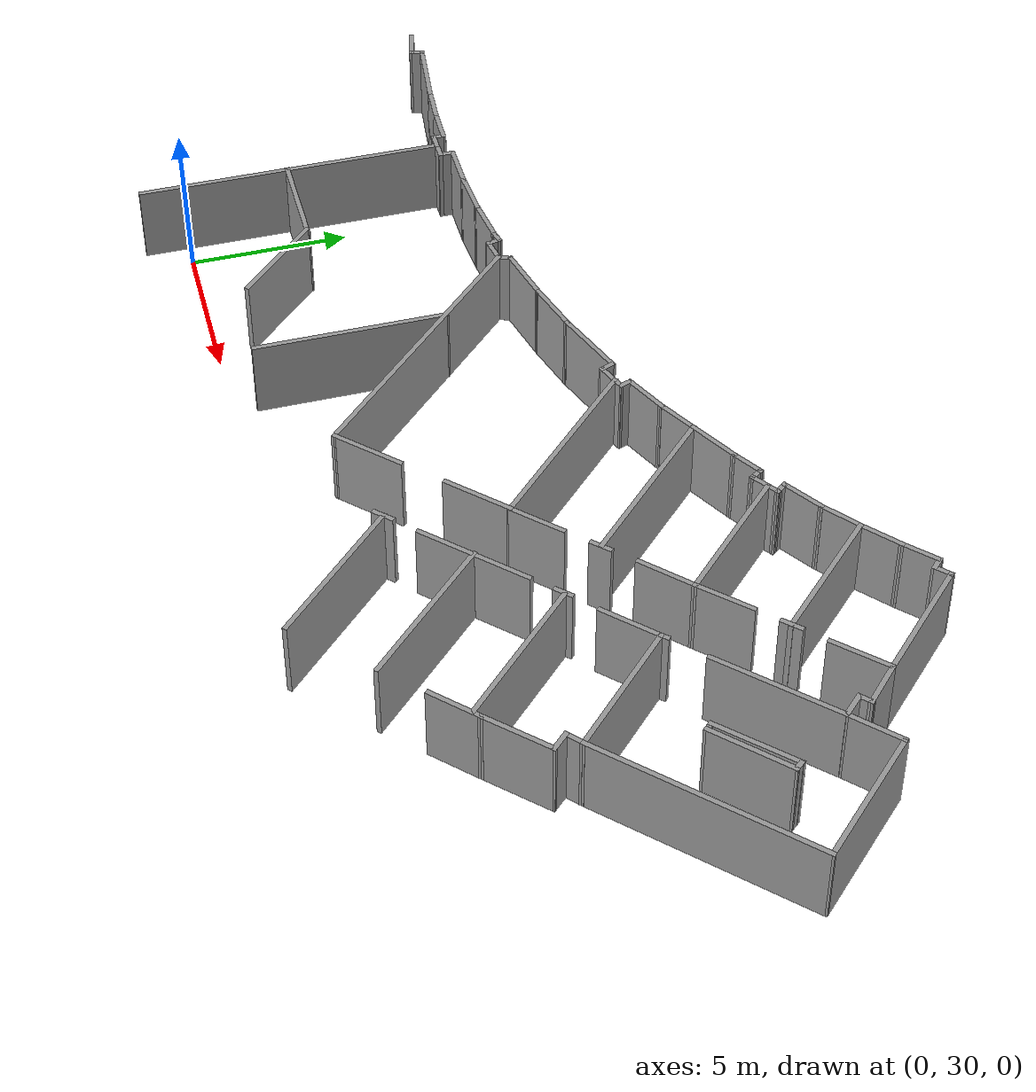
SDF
<sdf version="1.7">
 <model name="TI_1">
  <pose>-0.810812 4.85868 0 0 -0 0</pose>
  <link name="Wall_103">
   <collision name="Wall_103_Collision">
    <geometry><box><size>1.08869 0.15 2.5</size></box></geometry>
    <pose>0 0 1.25 0 -0 0</pose>
   </collision>
   <visual name="Wall_103_Visual">
    <pose>0 0 1.25 0 -0 0</pose>
    <geometry><box><size>1.08869 0.15 2.5</size></box></geometry>
    <material>
     <script><uri>file://media/materials/scripts/gazebo.material</uri><name>Gazebo/Grey</name></script>
     <ambient>1 1 1 1</ambient>
    </material>
    <meta><layer>0</layer></meta>
   </visual>
   <pose>-5.61835 33.9289 0 0 -0 -0.226799</pose>
  </link>
  <link name="Wall_104">
   <collision name="Wall_104_Collision">
    <geometry><box><size>0.495577 0.15 2.5</size></box></geometry>
    <pose>0 0 1.25 0 -0 0</pose>
   </collision>
   <visual name="Wall_104_Visual">
    <pose>0 0 1.25 0 -0 0</pose>
    <geometry><box><size>0.495577 0.15 2.5</size></box></geometry>
    <material>
     <script><uri>file://media/materials/scripts/gazebo.material</uri><name>Gazebo/Grey</name></script>
     <ambient>1 1 1 1</ambient>
    </material>
    <meta><layer>0</layer></meta>
   </visual>
   <pose>-5.11705 33.9904 0 0 -0 1.31347</pose>
  </link>
  <link name="Wall_105">
   <collision name="Wall_105_Collision">
    <geometry><box><size>2.43432 0.15 2.5</size></box></geometry>
    <pose>0 0 1.25 0 -0 0</pose>
   </collision>
   <visual name="Wall_105_Visual">
    <pose>0 0 1.25 0 -0 0</pose>
    <geometry><box><size>2.43432 0.15 2.5</size></box></geometry>
    <material>
     <script><uri>file://media/materials/scripts/gazebo.material</uri><name>Gazebo/Grey</name></script>
     <ambient>1 1 1 1</ambient>
    </material>
    <meta><layer>0</layer></meta>
   </visual>
   <pose>-3.93856 34.0256 0 0 -0 -0.115759</pose>
  </link>
  <link name="Wall_106">
   <collision name="Wall_106_Collision">
    <geometry><box><size>1.33177 0.15 2.5</size></box></geometry>
    <pose>0 0 1.25 0 -0 0</pose>
   </collision>
   <visual name="Wall_106_Visual">
    <pose>0 0 1.25 0 -0 0</pose>
    <geometry><box><size>1.33177 0.15 2.5</size></box></geometry>
    <material>
     <script><uri>file://media/materials/scripts/gazebo.material</uri><name>Gazebo/Grey</name></script>
     <ambient>1 1 1 1</ambient>
    </material>
    <meta><layer>0</layer></meta>
   </visual>
   <pose>-2.2148 33.8497 0 0 -0 -0.074489</pose>
  </link>
  <link name="Wall_107">
   <collision name="Wall_107_Collision">
    <geometry><box><size>1.32901 0.15 2.5</size></box></geometry>
    <pose>0 0 1.25 0 -0 0</pose>
   </collision>
   <visual name="Wall_107_Visual">
    <pose>0 0 1.25 0 -0 0</pose>
    <geometry><box><size>1.32901 0.15 2.5</size></box></geometry>
    <material>
     <script><uri>file://media/materials/scripts/gazebo.material</uri><name>Gazebo/Grey</name></script>
     <ambient>1 1 1 1</ambient>
    </material>
    <meta><layer>0</layer></meta>
   </visual>
   <pose>-1.03631 33.7881 0 0 -0 -0.029842</pose>
  </link>
  <link name="Wall_108">
   <collision name="Wall_108_Collision">
    <geometry><box><size>0.466609 0.15 2.5</size></box></geometry>
    <pose>0 0 1.25 0 -0 0</pose>
   </collision>
   <visual name="Wall_108_Visual">
    <pose>0 0 1.25 0 -0 0</pose>
    <geometry><box><size>0.466609 0.15 2.5</size></box></geometry>
    <material>
     <script><uri>file://media/materials/scripts/gazebo.material</uri><name>Gazebo/Grey</name></script>
     <ambient>1 1 1 1</ambient>
    </material>
    <meta><layer>0</layer></meta>
   </visual>
   <pose>-0.447067 33.6122 0 0 -0 -1.5708</pose>
  </link>
  <link name="Wall_109">
   <collision name="Wall_109_Collision">
    <geometry><box><size>0.589735 0.15 2.5</size></box></geometry>
    <pose>0 0 1.25 0 -0 0</pose>
   </collision>
   <visual name="Wall_109_Visual">
    <pose>0 0 1.25 0 -0 0</pose>
    <geometry><box><size>0.589735 0.15 2.5</size></box></geometry>
    <material>
     <script><uri>file://media/materials/scripts/gazebo.material</uri><name>Gazebo/Grey</name></script>
     <ambient>1 1 1 1</ambient>
    </material>
    <meta><layer>0</layer></meta>
   </visual>
   <pose>-0.2272 33.4539 0 0 -0 0</pose>
  </link>
  <link name="Wall_111">
   <collision name="Wall_111_Collision">
    <geometry><box><size>9.75 0.15 2.5</size></box></geometry>
    <pose>0 0 1.25 0 -0 0</pose>
   </collision>
   <visual name="Wall_111_Visual">
    <pose>0 0 1.25 0 -0 0</pose>
    <geometry><box><size>9.75 0.15 2.5</size></box></geometry>
    <material>
     <script><uri>file://media/materials/scripts/gazebo.material</uri><name>Gazebo/Grey</name></script>
     <ambient>1 1 1 1</ambient>
    </material>
    <meta><layer>0</layer></meta>
   </visual>
   <pose>-0.007333 28.6539 0 0 -0 -1.5708</pose>
  </link>
  <link name="Wall_122">
   <collision name="Wall_122_Collision">
    <geometry><box><size>0.648628 0.15 2.5</size></box></geometry>
    <pose>0 0 1.25 0 -0 0</pose>
   </collision>
   <visual name="Wall_122_Visual">
    <pose>0 0 1.25 0 -0 0</pose>
    <geometry><box><size>0.648628 0.15 2.5</size></box></geometry>
    <material>
     <script><uri>file://media/materials/scripts/gazebo.material</uri><name>Gazebo/Grey</name></script>
     <ambient>1 1 1 1</ambient>
    </material>
    <meta><layer>0</layer></meta>
   </visual>
   <pose>0.24162 33.4557 0 0 -0 0.00691</pose>
  </link>
  <link name="Wall_123">
   <collision name="Wall_123_Collision">
    <geometry><box><size>0.547699 0.15 2.5</size></box></geometry>
    <pose>0 0 1.25 0 -0 0</pose>
   </collision>
   <visual name="Wall_123_Visual">
    <pose>0 0 1.25 0 -0 0</pose>
    <geometry><box><size>0.547699 0.15 2.5</size></box></geometry>
    <material>
     <script><uri>file://media/materials/scripts/gazebo.material</uri><name>Gazebo/Grey</name></script>
     <ambient>1 1 1 1</ambient>
    </material>
    <meta><layer>0</layer></meta>
   </visual>
   <pose>0.490572 33.6562 0 0 -0 1.5708</pose>
  </link>
  <link name="Wall_124">
   <collision name="Wall_124_Collision">
    <geometry><box><size>1.60043 0.15 2.5</size></box></geometry>
    <pose>0 0 1.25 0 -0 0</pose>
   </collision>
   <visual name="Wall_124_Visual">
    <pose>0 0 1.25 0 -0 0</pose>
    <geometry><box><size>1.60043 0.15 2.5</size></box></geometry>
    <material>
     <script><uri>file://media/materials/scripts/gazebo.material</uri><name>Gazebo/Grey</name></script>
     <ambient>1 1 1 1</ambient>
    </material>
    <meta><layer>0</layer></meta>
   </visual>
   <pose>1.21579 33.8551 0 0 -0 0</pose>
  </link>
  <link name="Wall_125">
   <collision name="Wall_125_Collision">
    <geometry><box><size>1.5801 0.15 2.5</size></box></geometry>
    <pose>0 0 1.25 0 -0 0</pose>
   </collision>
   <visual name="Wall_125_Visual">
    <pose>0 0 1.25 0 -0 0</pose>
    <geometry><box><size>1.5801 0.15 2.5</size></box></geometry>
    <material>
     <script><uri>file://media/materials/scripts/gazebo.material</uri><name>Gazebo/Grey</name></script>
     <ambient>1 1 1 1</ambient>
    </material>
    <meta><layer>0</layer></meta>
   </visual>
   <pose>2.65452 33.9019 0 0 -0 0.06548</pose>
  </link>
  <link name="Wall_126">
   <collision name="Wall_126_Collision">
    <geometry><box><size>1.61246 0.15 2.5</size></box></geometry>
    <pose>0 0 1.25 0 -0 0</pose>
   </collision>
   <visual name="Wall_126_Visual">
    <pose>0 0 1.25 0 -0 0</pose>
    <geometry><box><size>1.61246 0.15 2.5</size></box></geometry>
    <material>
     <script><uri>file://media/materials/scripts/gazebo.material</uri><name>Gazebo/Grey</name></script>
     <ambient>1 1 1 1</ambient>
    </material>
    <meta><layer>0</layer></meta>
   </visual>
   <pose>4.09326 34.0422 0 0 -0 0.128323</pose>
  </link>
  <link name="Wall_127">
   <collision name="Wall_127_Collision">
    <geometry><box><size>0.462116 0.15 2.5</size></box></geometry>
    <pose>0 0 1.25 0 -0 0</pose>
   </collision>
   <visual name="Wall_127_Visual">
    <pose>0 0 1.25 0 -0 0</pose>
    <geometry><box><size>0.462116 0.15 2.5</size></box></geometry>
    <material>
     <script><uri>file://media/materials/scripts/gazebo.material</uri><name>Gazebo/Grey</name></script>
     <ambient>1 1 1 1</ambient>
    </material>
    <meta><layer>0</layer></meta>
   </visual>
   <pose>4.97053 34.1709 0 0 -0 0.226799</pose>
  </link>
  <link name="Wall_128">
   <collision name="Wall_128_Collision">
    <geometry><box><size>0.50786 0.15 2.5</size></box></geometry>
    <pose>0 0 1.25 0 -0 0</pose>
   </collision>
   <visual name="Wall_128_Visual">
    <pose>0 0 1.25 0 -0 0</pose>
    <geometry><box><size>0.50786 0.15 2.5</size></box></geometry>
    <material>
     <script><uri>file://media/materials/scripts/gazebo.material</uri><name>Gazebo/Grey</name></script>
     <ambient>1 1 1 1</ambient>
    </material>
    <meta><layer>0</layer></meta>
   </visual>
   <pose>5.15769 34.0305 0 0 -0 -1.3734</pose>
  </link>
  <link name="Wall_129">
   <collision name="Wall_129_Collision">
    <geometry><box><size>0.884588 0.15 2.5</size></box></geometry>
    <pose>0 0 1.25 0 -0 0</pose>
   </collision>
   <visual name="Wall_129_Visual">
    <pose>0 0 1.25 0 -0 0</pose>
    <geometry><box><size>0.884588 0.15 2.5</size></box></geometry>
    <material>
     <script><uri>file://media/materials/scripts/gazebo.material</uri><name>Gazebo/Grey</name></script>
     <ambient>1 1 1 1</ambient>
    </material>
    <meta><layer>0</layer></meta>
   </visual>
   <pose>5.55539 33.9136 0 0 -0 0.159913</pose>
  </link>
  <link name="Wall_130">
   <collision name="Wall_130_Collision">
    <geometry><box><size>9.31438 0.15 2.5</size></box></geometry>
    <pose>0 0 1.25 0 -0 0</pose>
   </collision>
   <visual name="Wall_130_Visual">
    <pose>0 0 1.25 0 -0 0</pose>
    <geometry><box><size>9.31438 0.15 2.5</size></box></geometry>
    <material>
     <script><uri>file://media/materials/scripts/gazebo.material</uri><name>Gazebo/Grey</name></script>
     <ambient>1 1 1 1</ambient>
    </material>
    <meta><layer>0</layer></meta>
   </visual>
   <pose>9.14637 30.7203 0 0 -0 -0.789008</pose>
  </link>
  <link name="Wall_131">
   <collision name="Wall_131_Collision">
    <geometry><box><size>2.36664 0.15 2.5</size></box></geometry>
    <pose>0 0 1.25 0 -0 0</pose>
   </collision>
   <visual name="Wall_131_Visual">
    <pose>0 0 1.25 0 -0 0</pose>
    <geometry><box><size>2.36664 0.15 2.5</size></box></geometry>
    <material>
     <script><uri>file://media/materials/scripts/gazebo.material</uri><name>Gazebo/Grey</name></script>
     <ambient>1 1 1 1</ambient>
    </material>
    <meta><layer>0</layer></meta>
   </visual>
   <pose>13.1585 28.2522 0 0 -0 0.785398</pose>
  </link>
  <link name="Wall_133">
   <collision name="Wall_133_Collision">
    <geometry><box><size>6 0.15 2.5</size></box></geometry>
    <pose>0 0 1.25 0 -0 0</pose>
   </collision>
   <visual name="Wall_133_Visual">
    <pose>0 0 1.25 0 -0 0</pose>
    <geometry><box><size>6 0.15 2.5</size></box></geometry>
    <material>
     <script><uri>file://media/materials/scripts/gazebo.material</uri><name>Gazebo/Grey</name></script>
     <ambient>1 1 1 1</ambient>
    </material>
    <meta><layer>0</layer></meta>
   </visual>
   <pose>8.09324 28.8599 0 0 -0 -1.5708</pose>
  </link>
  <link name="Wall_135">
   <collision name="Wall_135_Collision">
    <geometry><box><size>3.25 0.15 2.5</size></box></geometry>
    <pose>0 0 1.25 0 -0 0</pose>
   </collision>
   <visual name="Wall_135_Visual">
    <pose>0 0 1.25 0 -0 0</pose>
    <geometry><box><size>3.25 0.15 2.5</size></box></geometry>
    <material>
     <script><uri>file://media/materials/scripts/gazebo.material</uri><name>Gazebo/Grey</name></script>
     <ambient>1 1 1 1</ambient>
    </material>
    <meta><layer>0</layer></meta>
   </visual>
   <pose>1.52652 28.5504 0 0 -0 0</pose>
  </link>
  <link name="Wall_137">
   <collision name="Wall_137_Collision">
    <geometry><box><size>3.36136 0.15 2.5</size></box></geometry>
    <pose>0 0 1.25 0 -0 0</pose>
   </collision>
   <visual name="Wall_137_Visual">
    <pose>0 0 1.25 0 -0 0</pose>
    <geometry><box><size>3.36136 0.15 2.5</size></box></geometry>
    <material>
     <script><uri>file://media/materials/scripts/gazebo.material</uri><name>Gazebo/Grey</name></script>
     <ambient>1 1 1 1</ambient>
    </material>
    <meta><layer>0</layer></meta>
   </visual>
   <pose>4.20693 27.4101 0 0 -0 -0.789774</pose>
  </link>
  <link name="Wall_146">
   <collision name="Wall_146_Collision">
    <geometry><box><size>0.53295 0.15 2.5</size></box></geometry>
    <pose>0 0 1.25 0 -0 0</pose>
   </collision>
   <visual name="Wall_146_Visual">
    <pose>0 0 1.25 0 -0 0</pose>
    <geometry><box><size>0.53295 0.15 2.5</size></box></geometry>
    <material>
     <script><uri>file://media/materials/scripts/gazebo.material</uri><name>Gazebo/Grey</name></script>
     <ambient>1 1 1 1</ambient>
    </material>
    <meta><layer>0</layer></meta>
   </visual>
   <pose>5.98507 34.1514 0 0 -0 1.21287</pose>
  </link>
  <link name="Wall_147">
   <collision name="Wall_147_Collision">
    <geometry><box><size>1.9322 0.15 2.5</size></box></geometry>
    <pose>0 0 1.25 0 -0 0</pose>
   </collision>
   <visual name="Wall_147_Visual">
    <pose>0 0 1.25 0 -0 0</pose>
    <geometry><box><size>1.9322 0.15 2.5</size></box></geometry>
    <material>
     <script><uri>file://media/materials/scripts/gazebo.material</uri><name>Gazebo/Grey</name></script>
     <ambient>1 1 1 1</ambient>
    </material>
    <meta><layer>0</layer></meta>
   </visual>
   <pose>6.91843 34.5396 0 0 -0 0.236558</pose>
  </link>
  <link name="Wall_148">
   <collision name="Wall_148_Collision">
    <geometry><box><size>1.80955 0.15 2.5</size></box></geometry>
    <pose>0 0 1.25 0 -0 0</pose>
   </collision>
   <visual name="Wall_148_Visual">
    <pose>0 0 1.25 0 -0 0</pose>
    <geometry><box><size>1.80955 0.15 2.5</size></box></geometry>
    <material>
     <script><uri>file://media/materials/scripts/gazebo.material</uri><name>Gazebo/Grey</name></script>
     <ambient>1 1 1 1</ambient>
    </material>
    <meta><layer>0</layer></meta>
   </visual>
   <pose>8.58139 34.9804 0 0 -0 0.283421</pose>
  </link>
  <link name="Wall_149">
   <collision name="Wall_149_Collision">
    <geometry><box><size>2.41138 0.15 2.5</size></box></geometry>
    <pose>0 0 1.25 0 -0 0</pose>
   </collision>
   <visual name="Wall_149_Visual">
    <pose>0 0 1.25 0 -0 0</pose>
    <geometry><box><size>2.41138 0.15 2.5</size></box></geometry>
    <material>
     <script><uri>file://media/materials/scripts/gazebo.material</uri><name>Gazebo/Grey</name></script>
     <ambient>1 1 1 1</ambient>
    </material>
    <meta><layer>0</layer></meta>
   </visual>
   <pose>10.4377 35.607 0 0 -0 0.356369</pose>
  </link>
  <link name="Wall_150">
   <collision name="Wall_150_Collision">
    <geometry><box><size>0.517701 0.15 2.5</size></box></geometry>
    <pose>0 0 1.25 0 -0 0</pose>
   </collision>
   <visual name="Wall_150_Visual">
    <pose>0 0 1.25 0 -0 0</pose>
    <geometry><box><size>0.517701 0.15 2.5</size></box></geometry>
    <material>
     <script><uri>file://media/materials/scripts/gazebo.material</uri><name>Gazebo/Grey</name></script>
     <ambient>1 1 1 1</ambient>
    </material>
    <meta><layer>0</layer></meta>
   </visual>
   <pose>11.567 35.8313 0 0 -0 -1.18248</pose>
  </link>
  <link name="Wall_151">
   <collision name="Wall_151_Collision">
    <geometry><box><size>0.747524 0.15 2.5</size></box></geometry>
    <pose>0 0 1.25 0 -0 0</pose>
   </collision>
   <visual name="Wall_151_Visual">
    <pose>0 0 1.25 0 -0 0</pose>
    <geometry><box><size>0.747524 0.15 2.5</size></box></geometry>
    <material>
     <script><uri>file://media/materials/scripts/gazebo.material</uri><name>Gazebo/Grey</name></script>
     <ambient>1 1 1 1</ambient>
    </material>
    <meta><layer>0</layer></meta>
   </visual>
   <pose>11.915 35.7694 0 0 -0 0.370891</pose>
  </link>
  <link name="Wall_152">
   <collision name="Wall_152_Collision">
    <geometry><box><size>0.45471 0.15 2.5</size></box></geometry>
    <pose>0 0 1.25 0 -0 0</pose>
   </collision>
   <visual name="Wall_152_Visual">
    <pose>0 0 1.25 0 -0 0</pose>
    <geometry><box><size>0.45471 0.15 2.5</size></box></geometry>
    <material>
     <script><uri>file://media/materials/scripts/gazebo.material</uri><name>Gazebo/Grey</name></script>
     <ambient>1 1 1 1</ambient>
    </material>
    <meta><layer>0</layer></meta>
   </visual>
   <pose>12.3327 35.9395 0 0 -0 0.418224</pose>
  </link>
  <link name="Wall_153">
   <collision name="Wall_153_Collision">
    <geometry><box><size>0.46323 0.15 2.5</size></box></geometry>
    <pose>0 0 1.25 0 -0 0</pose>
   </collision>
   <visual name="Wall_153_Visual">
    <pose>0 0 1.25 0 -0 0</pose>
    <geometry><box><size>0.46323 0.15 2.5</size></box></geometry>
    <material>
     <script><uri>file://media/materials/scripts/gazebo.material</uri><name>Gazebo/Grey</name></script>
     <ambient>1 1 1 1</ambient>
    </material>
    <meta><layer>0</layer></meta>
   </visual>
   <pose>12.4178 36.1484 0 0 -0 1.92379</pose>
  </link>
  <link name="Wall_154">
   <collision name="Wall_154_Collision">
    <geometry><box><size>1.52006 0.15 2.5</size></box></geometry>
    <pose>0 0 1.25 0 -0 0</pose>
   </collision>
   <visual name="Wall_154_Visual">
    <pose>0 0 1.25 0 -0 0</pose>
    <geometry><box><size>1.52006 0.15 2.5</size></box></geometry>
    <material>
     <script><uri>file://media/materials/scripts/gazebo.material</uri><name>Gazebo/Grey</name></script>
     <ambient>1 1 1 1</ambient>
    </material>
    <meta><layer>0</layer></meta>
   </visual>
   <pose>12.9824 36.5893 0 0 -0 0.443448</pose>
  </link>
  <link name="Wall_155">
   <collision name="Wall_155_Collision">
    <geometry><box><size>1.39718 0.15 2.5</size></box></geometry>
    <pose>0 0 1.25 0 -0 0</pose>
   </collision>
   <visual name="Wall_155_Visual">
    <pose>0 0 1.25 0 -0 0</pose>
    <geometry><box><size>1.39718 0.15 2.5</size></box></geometry>
    <material>
     <script><uri>file://media/materials/scripts/gazebo.material</uri><name>Gazebo/Grey</name></script>
     <ambient>1 1 1 1</ambient>
    </material>
    <meta><layer>0</layer></meta>
   </visual>
   <pose>14.1426 37.1926 0 0 -0 0.519146</pose>
  </link>
  <link name="Wall_156">
   <collision name="Wall_156_Collision">
    <geometry><box><size>5.59232 0.15 2.5</size></box></geometry>
    <pose>0 0 1.25 0 -0 0</pose>
   </collision>
   <visual name="Wall_156_Visual">
    <pose>0 0 1.25 0 -0 0</pose>
    <geometry><box><size>5.59232 0.15 2.5</size></box></geometry>
    <material>
     <script><uri>file://media/materials/scripts/gazebo.material</uri><name>Gazebo/Grey</name></script>
     <ambient>1 1 1 1</ambient>
    </material>
    <meta><layer>0</layer></meta>
   </visual>
   <pose>16.611 35.5807 0 0 -0 -0.783911</pose>
  </link>
  <link name="Wall_158">
   <collision name="Wall_158_Collision">
    <geometry><box><size>1.75023 0.15 2.5</size></box></geometry>
    <pose>0 0 1.25 0 -0 0</pose>
   </collision>
   <visual name="Wall_158_Visual">
    <pose>0 0 1.25 0 -0 0</pose>
    <geometry><box><size>1.75023 0.15 2.5</size></box></geometry>
    <material>
     <script><uri>file://media/materials/scripts/gazebo.material</uri><name>Gazebo/Grey</name></script>
     <ambient>1 1 1 1</ambient>
    </material>
    <meta><layer>0</layer></meta>
   </visual>
   <pose>15.3802 37.8964 0 0 -0 0.515549</pose>
  </link>
  <link name="Wall_159">
   <collision name="Wall_159_Collision">
    <geometry><box><size>1.10271 0.15 2.5</size></box></geometry>
    <pose>0 0 1.25 0 -0 0</pose>
   </collision>
   <visual name="Wall_159_Visual">
    <pose>0 0 1.25 0 -0 0</pose>
    <geometry><box><size>1.10271 0.15 2.5</size></box></geometry>
    <material>
     <script><uri>file://media/materials/scripts/gazebo.material</uri><name>Gazebo/Grey</name></script>
     <ambient>1 1 1 1</ambient>
    </material>
    <meta><layer>0</layer></meta>
   </visual>
   <pose>16.4785 38.5461 0 0 -0 0.565484</pose>
  </link>
  <link name="Wall_160">
   <collision name="Wall_160_Collision">
    <geometry><box><size>0.49763 0.15 2.5</size></box></geometry>
    <pose>0 0 1.25 0 -0 0</pose>
   </collision>
   <visual name="Wall_160_Visual">
    <pose>0 0 1.25 0 -0 0</pose>
    <geometry><box><size>0.49763 0.15 2.5</size></box></geometry>
    <material>
     <script><uri>file://media/materials/scripts/gazebo.material</uri><name>Gazebo/Grey</name></script>
     <ambient>1 1 1 1</ambient>
    </material>
    <meta><layer>0</layer></meta>
   </visual>
   <pose>16.9735 38.6544 0 0 -0 -1.00748</pose>
  </link>
  <link name="Wall_161">
   <collision name="Wall_161_Collision">
    <geometry><box><size>1.03838 0.15 2.5</size></box></geometry>
    <pose>0 0 1.25 0 -0 0</pose>
   </collision>
   <visual name="Wall_161_Visual">
    <pose>0 0 1.25 0 -0 0</pose>
    <geometry><box><size>1.03838 0.15 2.5</size></box></geometry>
    <material>
     <script><uri>file://media/materials/scripts/gazebo.material</uri><name>Gazebo/Grey</name></script>
     <ambient>1 1 1 1</ambient>
    </material>
    <meta><layer>0</layer></meta>
   </visual>
   <pose>17.4298 38.7627 0 0 -0 0.612152</pose>
  </link>
  <link name="Wall_162">
   <collision name="Wall_162_Collision">
    <geometry><box><size>0.490676 0.15 2.5</size></box></geometry>
    <pose>0 0 1.25 0 -0 0</pose>
   </collision>
   <visual name="Wall_162_Visual">
    <pose>0 0 1.25 0 -0 0</pose>
    <geometry><box><size>0.490676 0.15 2.5</size></box></geometry>
    <material>
     <script><uri>file://media/materials/scripts/gazebo.material</uri><name>Gazebo/Grey</name></script>
     <ambient>1 1 1 1</ambient>
    </material>
    <meta><layer>0</layer></meta>
   </visual>
   <pose>17.6851 39.1494 0 0 -0 2.25972</pose>
  </link>
  <link name="Wall_163">
   <collision name="Wall_163_Collision">
    <geometry><box><size>1.45429 0.15 2.5</size></box></geometry>
    <pose>0 0 1.25 0 -0 0</pose>
   </collision>
   <visual name="Wall_163_Visual">
    <pose>0 0 1.25 0 -0 0</pose>
    <geometry><box><size>1.45429 0.15 2.5</size></box></geometry>
    <material>
     <script><uri>file://media/materials/scripts/gazebo.material</uri><name>Gazebo/Grey</name></script>
     <ambient>1 1 1 1</ambient>
    </material>
    <meta><layer>0</layer></meta>
   </visual>
   <pose>18.1182 39.6444 0 0 -0 0.591292</pose>
  </link>
  <link name="Wall_164">
   <collision name="Wall_164_Collision">
    <geometry><box><size>1.40387 0.15 2.5</size></box></geometry>
    <pose>0 0 1.25 0 -0 0</pose>
   </collision>
   <visual name="Wall_164_Visual">
    <pose>0 0 1.25 0 -0 0</pose>
    <geometry><box><size>1.40387 0.15 2.5</size></box></geometry>
    <material>
     <script><uri>file://media/materials/scripts/gazebo.material</uri><name>Gazebo/Grey</name></script>
     <ambient>1 1 1 1</ambient>
    </material>
    <meta><layer>0</layer></meta>
   </visual>
   <pose>19.1469 40.4024 0 0 -0 0.680521</pose>
  </link>
  <link name="Wall_165">
   <collision name="Wall_165_Collision">
    <geometry><box><size>4.43793 0.15 2.5</size></box></geometry>
    <pose>0 0 1.25 0 -0 0</pose>
   </collision>
   <visual name="Wall_165_Visual">
    <pose>0 0 1.25 0 -0 0</pose>
    <geometry><box><size>4.43793 0.15 2.5</size></box></geometry>
    <material>
     <script><uri>file://media/materials/scripts/gazebo.material</uri><name>Gazebo/Grey</name></script>
     <ambient>1 1 1 1</ambient>
    </material>
    <meta><layer>0</layer></meta>
   </visual>
   <pose>21.1425 39.2732 0 0 -0 -0.7905</pose>
  </link>
  <link name="Wall_167">
   <collision name="Wall_167_Collision">
    <geometry><box><size>1.45155 0.15 2.5</size></box></geometry>
    <pose>0 0 1.25 0 -0 0</pose>
   </collision>
   <visual name="Wall_167_Visual">
    <pose>0 0 1.25 0 -0 0</pose>
    <geometry><box><size>1.45155 0.15 2.5</size></box></geometry>
    <material>
     <script><uri>file://media/materials/scripts/gazebo.material</uri><name>Gazebo/Grey</name></script>
     <ambient>1 1 1 1</ambient>
    </material>
    <meta><layer>0</layer></meta>
   </visual>
   <pose>20.1217 41.228 0 0 -0 0.724103</pose>
  </link>
  <link name="Wall_168">
   <collision name="Wall_168_Collision">
    <geometry><box><size>1.27919 0.15 2.5</size></box></geometry>
    <pose>0 0 1.25 0 -0 0</pose>
   </collision>
   <visual name="Wall_168_Visual">
    <pose>0 0 1.25 0 -0 0</pose>
    <geometry><box><size>1.27919 0.15 2.5</size></box></geometry>
    <material>
     <script><uri>file://media/materials/scripts/gazebo.material</uri><name>Gazebo/Grey</name></script>
     <ambient>1 1 1 1</ambient>
    </material>
    <meta><layer>0</layer></meta>
   </visual>
   <pose>21.0157 42.051 0 0 -0 0.767085</pose>
  </link>
  <link name="Wall_169">
   <collision name="Wall_169_Collision">
    <geometry><box><size>0.485003 0.15 2.5</size></box></geometry>
    <pose>0 0 1.25 0 -0 0</pose>
   </collision>
   <visual name="Wall_169_Visual">
    <pose>0 0 1.25 0 -0 0</pose>
    <geometry><box><size>0.485003 0.15 2.5</size></box></geometry>
    <material>
     <script><uri>file://media/materials/scripts/gazebo.material</uri><name>Gazebo/Grey</name></script>
     <ambient>1 1 1 1</ambient>
    </material>
    <meta><layer>0</layer></meta>
   </visual>
   <pose>21.542 42.3259 0 0 -0 -0.773053</pose>
  </link>
  <link name="Wall_170">
   <collision name="Wall_170_Collision">
    <geometry><box><size>0.638062 0.15 2.5</size></box></geometry>
    <pose>0 0 1.25 0 -0 0</pose>
   </collision>
   <visual name="Wall_170_Visual">
    <pose>0 0 1.25 0 -0 0</pose>
    <geometry><box><size>0.638062 0.15 2.5</size></box></geometry>
    <material>
     <script><uri>file://media/materials/scripts/gazebo.material</uri><name>Gazebo/Grey</name></script>
     <ambient>1 1 1 1</ambient>
    </material>
    <meta><layer>0</layer></meta>
   </visual>
   <pose>21.8374 42.3785 0 0 -0 0.768451</pose>
  </link>
  <link name="Wall_172">
   <collision name="Wall_172_Collision">
    <geometry><box><size>3.9866 0.15 2.5</size></box></geometry>
    <pose>0 0 1.25 0 -0 0</pose>
   </collision>
   <visual name="Wall_172_Visual">
    <pose>0 0 1.25 0 -0 0</pose>
    <geometry><box><size>3.9866 0.15 2.5</size></box></geometry>
    <material>
     <script><uri>file://media/materials/scripts/gazebo.material</uri><name>Gazebo/Grey</name></script>
     <ambient>1 1 1 1</ambient>
    </material>
    <meta><layer>0</layer></meta>
   </visual>
   <pose>23.3751 41.1975 0 0 -0 -0.78109</pose>
  </link>
  <link name="Wall_173">
   <collision name="Wall_173_Collision">
    <geometry><box><size>1.9634 0.15 2.5</size></box></geometry>
    <pose>0 0 1.25 0 -0 0</pose>
   </collision>
   <visual name="Wall_173_Visual">
    <pose>0 0 1.25 0 -0 0</pose>
    <geometry><box><size>1.9634 0.15 2.5</size></box></geometry>
    <material>
     <script><uri>file://media/materials/scripts/gazebo.material</uri><name>Gazebo/Grey</name></script>
     <ambient>1 1 1 1</ambient>
    </material>
    <meta><layer>0</layer></meta>
   </visual>
   <pose>24.1022 39.1999 0 0 -0 -2.34702</pose>
  </link>
  <link name="Wall_175">
   <collision name="Wall_175_Collision">
    <geometry><box><size>4.5 0.15 2.5</size></box></geometry>
    <pose>0 0 1.25 0 -0 0</pose>
   </collision>
   <visual name="Wall_175_Visual">
    <pose>0 0 1.25 0 -0 0</pose>
    <geometry><box><size>4.5 0.15 2.5</size></box></geometry>
    <material>
     <script><uri>file://media/materials/scripts/gazebo.material</uri><name>Gazebo/Grey</name></script>
     <ambient>1 1 1 1</ambient>
    </material>
    <meta><layer>0</layer></meta>
   </visual>
   <pose>19.0761 37.2385 0 0 -0 -0.785398</pose>
  </link>
  <link name="Wall_176">
   <collision name="Wall_176_Collision">
    <geometry><box><size>1.91359 0.15 2.5</size></box></geometry>
    <pose>0 0 1.25 0 -0 0</pose>
   </collision>
   <visual name="Wall_176_Visual">
    <pose>0 0 1.25 0 -0 0</pose>
    <geometry><box><size>1.91359 0.15 2.5</size></box></geometry>
    <material>
     <script><uri>file://media/materials/scripts/gazebo.material</uri><name>Gazebo/Grey</name></script>
     <ambient>1 1 1 1</ambient>
    </material>
    <meta><layer>0</layer></meta>
   </visual>
   <pose>21.2288 36.3327 0 0 -0 0.799366</pose>
  </link>
  <link name="Wall_178">
   <collision name="Wall_178_Collision">
    <geometry><box><size>1.90518 0.15 2.5</size></box></geometry>
    <pose>0 0 1.25 0 -0 0</pose>
   </collision>
   <visual name="Wall_178_Visual">
    <pose>0 0 1.25 0 -0 0</pose>
    <geometry><box><size>1.90518 0.15 2.5</size></box></geometry>
    <material>
     <script><uri>file://media/materials/scripts/gazebo.material</uri><name>Gazebo/Grey</name></script>
     <ambient>1 1 1 1</ambient>
    </material>
    <meta><layer>0</layer></meta>
   </visual>
   <pose>19.9878 35.0858 0 0 -0 -2.36549</pose>
  </link>
  <link name="Wall_181">
   <collision name="Wall_181_Collision">
    <geometry><box><size>0.707369 0.15 2.5</size></box></geometry>
    <pose>0 0 1.25 0 -0 0</pose>
   </collision>
   <visual name="Wall_181_Visual">
    <pose>0 0 1.25 0 -0 0</pose>
    <geometry><box><size>0.707369 0.15 2.5</size></box></geometry>
    <material>
     <script><uri>file://media/materials/scripts/gazebo.material</uri><name>Gazebo/Grey</name></script>
     <ambient>1 1 1 1</ambient>
    </material>
    <meta><layer>0</layer></meta>
   </visual>
   <pose>18.5439 33.6358 0 0 -0 0.800322</pose>
  </link>
  <link name="Wall_184">
   <collision name="Wall_184_Collision">
    <geometry><box><size>0.707369 0.15 2.5</size></box></geometry>
    <pose>0 0 1.25 0 -0 0</pose>
   </collision>
   <visual name="Wall_184_Visual">
    <pose>0 0 1.25 0 -0 0</pose>
    <geometry><box><size>0.707369 0.15 2.5</size></box></geometry>
    <material>
     <script><uri>file://media/materials/scripts/gazebo.material</uri><name>Gazebo/Grey</name></script>
     <ambient>1 1 1 1</ambient>
    </material>
    <meta><layer>0</layer></meta>
   </visual>
   <pose>22.6494 37.7648 0 0 -0 -2.34127</pose>
  </link>
  <link name="Wall_186">
   <collision name="Wall_186_Collision">
    <geometry><box><size>1.5227 0.15 2.5</size></box></geometry>
    <pose>0 0 1.25 0 -0 0</pose>
   </collision>
   <visual name="Wall_186_Visual">
    <pose>0 0 1.25 0 -0 0</pose>
    <geometry><box><size>1.5227 0.15 2.5</size></box></geometry>
    <material>
     <script><uri>file://media/materials/scripts/gazebo.material</uri><name>Gazebo/Grey</name></script>
     <ambient>1 1 1 1</ambient>
    </material>
    <meta><layer>0</layer></meta>
   </visual>
   <pose>25.2315 39.3705 0 0 -0 -0.767218</pose>
  </link>
  <link name="Wall_187">
   <collision name="Wall_187_Collision">
    <geometry><box><size>0.515993 0.15 2.5</size></box></geometry>
    <pose>0 0 1.25 0 -0 0</pose>
   </collision>
   <visual name="Wall_187_Visual">
    <pose>0 0 1.25 0 -0 0</pose>
    <geometry><box><size>0.515993 0.15 2.5</size></box></geometry>
    <material>
     <script><uri>file://media/materials/scripts/gazebo.material</uri><name>Gazebo/Grey</name></script>
     <ambient>1 1 1 1</ambient>
    </material>
    <meta><layer>0</layer></meta>
   </visual>
   <pose>25.5961 38.7647 0 0 -0 -2.35619</pose>
  </link>
  <link name="Wall_188">
   <collision name="Wall_188_Collision">
    <geometry><box><size>0.873715 0.15 2.5</size></box></geometry>
    <pose>0 0 1.25 0 -0 0</pose>
   </collision>
   <visual name="Wall_188_Visual">
    <pose>0 0 1.25 0 -0 0</pose>
    <geometry><box><size>0.873715 0.15 2.5</size></box></geometry>
    <material>
     <script><uri>file://media/materials/scripts/gazebo.material</uri><name>Gazebo/Grey</name></script>
     <ambient>1 1 1 1</ambient>
    </material>
    <meta><layer>0</layer></meta>
   </visual>
   <pose>25.7196 38.3765 0 0 -0 -0.796892</pose>
  </link>
  <link name="Wall_190">
   <collision name="Wall_190_Collision">
    <geometry><box><size>4.11777 0.15 2.5</size></box></geometry>
    <pose>0 0 1.25 0 -0 0</pose>
   </collision>
   <visual name="Wall_190_Visual">
    <pose>0 0 1.25 0 -0 0</pose>
    <geometry><box><size>4.11777 0.15 2.5</size></box></geometry>
    <material>
     <script><uri>file://media/materials/scripts/gazebo.material</uri><name>Gazebo/Grey</name></script>
     <ambient>1 1 1 1</ambient>
    </material>
    <meta><layer>0</layer></meta>
   </visual>
   <pose>24.5786 36.7061 0 0 -0 -2.34991</pose>
  </link>
  <link name="Wall_192">
   <collision name="Wall_192_Collision">
    <geometry><box><size>1.81369 0.15 2.5</size></box></geometry>
    <pose>0 0 1.25 0 -0 0</pose>
   </collision>
   <visual name="Wall_192_Visual">
    <pose>0 0 1.25 0 -0 0</pose>
    <geometry><box><size>1.81369 0.15 2.5</size></box></geometry>
    <material>
     <script><uri>file://media/materials/scripts/gazebo.material</uri><name>Gazebo/Grey</name></script>
     <ambient>1 1 1 1</ambient>
    </material>
    <meta><layer>0</layer></meta>
   </visual>
   <pose>26.5666 38.7 0 0 -0 0.775398</pose>
  </link>
  <link name="Wall_193">
   <collision name="Wall_193_Collision">
    <geometry><box><size>4.36744 0.15 2.5</size></box></geometry>
    <pose>0 0 1.25 0 -0 0</pose>
   </collision>
   <visual name="Wall_193_Visual">
    <pose>0 0 1.25 0 -0 0</pose>
    <geometry><box><size>4.36744 0.15 2.5</size></box></geometry>
    <material>
     <script><uri>file://media/materials/scripts/gazebo.material</uri><name>Gazebo/Grey</name></script>
     <ambient>1 1 1 1</ambient>
    </material>
    <meta><layer>0</layer></meta>
   </visual>
   <pose>28.637 37.7766 0 0 -0 -0.79526</pose>
  </link>
  <link name="Wall_195">
   <collision name="Wall_195_Collision">
    <geometry><box><size>7.19736 0.15 2.5</size></box></geometry>
    <pose>0 0 1.25 0 -0 0</pose>
   </collision>
   <visual name="Wall_195_Visual">
    <pose>0 0 1.25 0 -0 0</pose>
    <geometry><box><size>7.19736 0.15 2.5</size></box></geometry>
    <material>
     <script><uri>file://media/materials/scripts/gazebo.material</uri><name>Gazebo/Grey</name></script>
     <ambient>1 1 1 1</ambient>
    </material>
    <meta><layer>0</layer></meta>
   </visual>
   <pose>27.6237 33.7772 0 0 -0 -2.3554</pose>
  </link>
  <link name="Wall_196">
   <collision name="Wall_196_Collision">
    <geometry><box><size>4.39628 0.15 2.5</size></box></geometry>
    <pose>0 0 1.25 0 -0 0</pose>
   </collision>
   <visual name="Wall_196_Visual">
    <pose>0 0 1.25 0 -0 0</pose>
    <geometry><box><size>4.39628 0.15 2.5</size></box></geometry>
    <material>
     <script><uri>file://media/materials/scripts/gazebo.material</uri><name>Gazebo/Grey</name></script>
     <ambient>1 1 1 1</ambient>
    </material>
    <meta><layer>0</layer></meta>
   </visual>
   <pose>23.625 32.7771 0 0 -0 2.36138</pose>
  </link>
  <link name="Wall_197">
   <collision name="Wall_197_Collision">
    <geometry><box><size>0.337333 0.15 2.5</size></box></geometry>
    <pose>0 0 1.25 0 -0 0</pose>
   </collision>
   <visual name="Wall_197_Visual">
    <pose>0 0 1.25 0 -0 0</pose>
    <geometry><box><size>0.337333 0.15 2.5</size></box></geometry>
    <material>
     <script><uri>file://media/materials/scripts/gazebo.material</uri><name>Gazebo/Grey</name></script>
     <ambient>1 1 1 1</ambient>
    </material>
    <meta><layer>0</layer></meta>
   </visual>
   <pose>22.1782 34.3406 0 0 -0 0.844154</pose>
  </link>
  <link name="Wall_199">
   <collision name="Wall_199_Collision">
    <geometry><box><size>2 0.15 2.5</size></box></geometry>
    <pose>0 0 1.25 0 -0 0</pose>
   </collision>
   <visual name="Wall_199_Visual">
    <pose>0 0 1.25 0 -0 0</pose>
    <geometry><box><size>2 0.15 2.5</size></box></geometry>
    <material>
     <script><uri>file://media/materials/scripts/gazebo.material</uri><name>Gazebo/Grey</name></script>
     <ambient>1 1 1 1</ambient>
    </material>
    <meta><layer>0</layer></meta>
   </visual>
   <pose>21.4619 33.6165 0 0 -0 -2.35619</pose>
  </link>
  <link name="Wall_201">
   <collision name="Wall_201_Collision">
    <geometry><box><size>2.74251 0.15 2.5</size></box></geometry>
    <pose>0 0 1.25 0 -0 0</pose>
   </collision>
   <visual name="Wall_201_Visual">
    <pose>0 0 1.25 0 -0 0</pose>
    <geometry><box><size>2.74251 0.15 2.5</size></box></geometry>
    <material>
     <script><uri>file://media/materials/scripts/gazebo.material</uri><name>Gazebo/Grey</name></script>
     <ambient>1 1 1 1</ambient>
    </material>
    <meta><layer>0</layer></meta>
   </visual>
   <pose>26.2669 35.551 0 0 -0 -2.34776</pose>
  </link>
  <link name="Wall_202">
   <collision name="Wall_202_Collision">
    <geometry><box><size>0.368769 0.15 2.5</size></box></geometry>
    <pose>0 0 1.25 0 -0 0</pose>
   </collision>
   <visual name="Wall_202_Visual">
    <pose>0 0 1.25 0 -0 0</pose>
    <geometry><box><size>0.368769 0.15 2.5</size></box></geometry>
    <material>
     <script><uri>file://media/materials/scripts/gazebo.material</uri><name>Gazebo/Grey</name></script>
     <ambient>1 1 1 1</ambient>
    </material>
    <meta><layer>0</layer></meta>
   </visual>
   <pose>25.4354 34.5494 0 0 -0 -0.785398</pose>
  </link>
  <link name="Wall_203">
   <collision name="Wall_203_Collision">
    <geometry><box><size>2.72056 0.15 2.5</size></box></geometry>
    <pose>0 0 1.25 0 -0 0</pose>
   </collision>
   <visual name="Wall_203_Visual">
    <pose>0 0 1.25 0 -0 0</pose>
    <geometry><box><size>2.72056 0.15 2.5</size></box></geometry>
    <material>
     <script><uri>file://media/materials/scripts/gazebo.material</uri><name>Gazebo/Grey</name></script>
     <ambient>1 1 1 1</ambient>
    </material>
    <meta><layer>0</layer></meta>
   </visual>
   <pose>26.4254 35.377 0 0 -0 0.781143</pose>
  </link>
  <link name="Wall_204">
   <collision name="Wall_204_Collision">
    <geometry><box><size>0.385749 0.15 2.5</size></box></geometry>
    <pose>0 0 1.25 0 -0 0</pose>
   </collision>
   <visual name="Wall_204_Visual">
    <pose>0 0 1.25 0 -0 0</pose>
    <geometry><box><size>0.385749 0.15 2.5</size></box></geometry>
    <material>
     <script><uri>file://media/materials/scripts/gazebo.material</uri><name>Gazebo/Grey</name></script>
     <ambient>1 1 1 1</ambient>
    </material>
    <meta><layer>0</layer></meta>
   </visual>
   <pose>27.2608 36.3709 0 0 -0 2.28654</pose>
  </link>
  <link name="Wall_206">
   <collision name="Wall_206_Collision">
    <geometry><box><size>6.23559 0.15 2.5</size></box></geometry>
    <pose>0 0 1.25 0 -0 0</pose>
   </collision>
   <visual name="Wall_206_Visual">
    <pose>0 0 1.25 0 -0 0</pose>
    <geometry><box><size>6.23559 0.15 2.5</size></box></geometry>
    <material>
     <script><uri>file://media/materials/scripts/gazebo.material</uri><name>Gazebo/Grey</name></script>
     <ambient>1 1 1 1</ambient>
    </material>
    <meta><layer>0</layer></meta>
   </visual>
   <pose>14.3524 33.7335 0 0 -0 -0.781972</pose>
  </link>
  <link name="Wall_207">
   <collision name="Wall_207_Collision">
    <geometry><box><size>1.85142 0.15 2.5</size></box></geometry>
    <pose>0 0 1.25 0 -0 0</pose>
   </collision>
   <visual name="Wall_207_Visual">
    <pose>0 0 1.25 0 -0 0</pose>
    <geometry><box><size>1.85142 0.15 2.5</size></box></geometry>
    <material>
     <script><uri>file://media/materials/scripts/gazebo.material</uri><name>Gazebo/Grey</name></script>
     <ambient>1 1 1 1</ambient>
    </material>
    <meta><layer>0</layer></meta>
   </visual>
   <pose>17.1117 32.192 0 0 -0 0.787392</pose>
  </link>
  <link name="Wall_209">
   <collision name="Wall_209_Collision">
    <geometry><box><size>2.25 0.15 2.5</size></box></geometry>
    <pose>0 0 1.25 0 -0 0</pose>
   </collision>
   <visual name="Wall_209_Visual">
    <pose>0 0 1.25 0 -0 0</pose>
    <geometry><box><size>2.25 0.15 2.5</size></box></geometry>
    <material>
     <script><uri>file://media/materials/scripts/gazebo.material</uri><name>Gazebo/Grey</name></script>
     <ambient>1 1 1 1</ambient>
    </material>
    <meta><layer>0</layer></meta>
   </visual>
   <pose>15.7477 30.8459 0 0 -0 0.785398</pose>
  </link>
  <link name="Wall_211">
   <collision name="Wall_211_Collision">
    <geometry><box><size>0.693542 0.15 2.5</size></box></geometry>
    <pose>0 0 1.25 0 -0 0</pose>
   </collision>
   <visual name="Wall_211_Visual">
    <pose>0 0 1.25 0 -0 0</pose>
    <geometry><box><size>0.693542 0.15 2.5</size></box></geometry>
    <material>
     <script><uri>file://media/materials/scripts/gazebo.material</uri><name>Gazebo/Grey</name></script>
     <ambient>1 1 1 1</ambient>
    </material>
    <meta><layer>0</layer></meta>
   </visual>
   <pose>24.9315 31.1024 0 0 -0 -2.41148</pose>
  </link>
  <link name="Wall_212">
   <collision name="Wall_212_Collision">
    <geometry><box><size>0.714364 0.15 2.5</size></box></geometry>
    <pose>0 0 1.25 0 -0 0</pose>
   </collision>
   <visual name="Wall_212_Visual">
    <pose>0 0 1.25 0 -0 0</pose>
    <geometry><box><size>0.714364 0.15 2.5</size></box></geometry>
    <material>
     <script><uri>file://media/materials/scripts/gazebo.material</uri><name>Gazebo/Grey</name></script>
     <ambient>1 1 1 1</ambient>
    </material>
    <meta><layer>0</layer></meta>
   </visual>
   <pose>24.9234 30.7165 0 0 -0 -0.811034</pose>
  </link>
  <link name="Wall_213">
   <collision name="Wall_213_Collision">
    <geometry><box><size>2.31279 0.15 2.5</size></box></geometry>
    <pose>0 0 1.25 0 -0 0</pose>
   </collision>
   <visual name="Wall_213_Visual">
    <pose>0 0 1.25 0 -0 0</pose>
    <geometry><box><size>2.31279 0.15 2.5</size></box></geometry>
    <material>
     <script><uri>file://media/materials/scripts/gazebo.material</uri><name>Gazebo/Grey</name></script>
     <ambient>1 1 1 1</ambient>
    </material>
    <meta><layer>0</layer></meta>
   </visual>
   <pose>24.3608 29.7397 0 0 -0 -2.34616</pose>
  </link>
  <link name="Wall_214">
   <collision name="Wall_214_Collision">
    <geometry><box><size>1.76299 0.15 2.5</size></box></geometry>
    <pose>0 0 1.25 0 -0 0</pose>
   </collision>
   <visual name="Wall_214_Visual">
    <pose>0 0 1.25 0 -0 0</pose>
    <geometry><box><size>1.76299 0.15 2.5</size></box></geometry>
    <material>
     <script><uri>file://media/materials/scripts/gazebo.material</uri><name>Gazebo/Grey</name></script>
     <ambient>1 1 1 1</ambient>
    </material>
    <meta><layer>0</layer></meta>
   </visual>
   <pose>23.031 28.3997 0 0 -0 -2.36068</pose>
  </link>
  <link name="Wall_219">
   <collision name="Wall_219_Collision">
    <geometry><box><size>4.96965 0.15 2.5</size></box></geometry>
    <pose>0 0 1.25 0 -0 0</pose>
   </collision>
   <visual name="Wall_219_Visual">
    <pose>0 0 1.25 0 -0 0</pose>
    <geometry><box><size>4.96965 0.15 2.5</size></box></geometry>
    <material>
     <script><uri>file://media/materials/scripts/gazebo.material</uri><name>Gazebo/Grey</name></script>
     <ambient>1 1 1 1</ambient>
    </material>
    <meta><layer>0</layer></meta>
   </visual>
   <pose>21.7009 30.4966 0 0 -0 -0.787394</pose>
  </link>
  <link name="Wall_222">
   <collision name="Wall_222_Collision">
    <geometry><box><size>0.62148 0.15 2.5</size></box></geometry>
    <pose>0 0 1.25 0 -0 0</pose>
   </collision>
   <visual name="Wall_222_Visual">
    <pose>0 0 1.25 0 -0 0</pose>
    <geometry><box><size>0.62148 0.15 2.5</size></box></geometry>
    <material>
     <script><uri>file://media/materials/scripts/gazebo.material</uri><name>Gazebo/Grey</name></script>
     <ambient>1 1 1 1</ambient>
    </material>
    <meta><layer>0</layer></meta>
   </visual>
   <pose>19.9459 32.1836 0 0 -0 -2.33579</pose>
  </link>
  <link name="Wall_224">
   <collision name="Wall_224_Collision">
    <geometry><box><size>3.66344 0.15 2.5</size></box></geometry>
    <pose>0 0 1.25 0 -0 0</pose>
   </collision>
   <visual name="Wall_224_Visual">
    <pose>0 0 1.25 0 -0 0</pose>
    <geometry><box><size>3.66344 0.15 2.5</size></box></geometry>
    <material>
     <script><uri>file://media/materials/scripts/gazebo.material</uri><name>Gazebo/Grey</name></script>
     <ambient>1 1 1 1</ambient>
    </material>
    <meta><layer>0</layer></meta>
   </visual>
   <pose>17.9469 30.1735 0 0 -0 -2.35143</pose>
  </link>
  <link name="Wall_226">
   <collision name="Wall_226_Collision">
    <geometry><box><size>5.03542 0.15 2.5</size></box></geometry>
    <pose>0 0 1.25 0 -0 0</pose>
   </collision>
   <visual name="Wall_226_Visual">
    <pose>0 0 1.25 0 -0 0</pose>
    <geometry><box><size>5.03542 0.15 2.5</size></box></geometry>
    <material>
     <script><uri>file://media/materials/scripts/gazebo.material</uri><name>Gazebo/Grey</name></script>
     <ambient>1 1 1 1</ambient>
    </material>
    <meta><layer>0</layer></meta>
   </visual>
   <pose>19.6327 28.4522 0 0 -0 -0.792247</pose>
  </link>
  <link name="Wall_228">
   <collision name="Wall_228_Collision">
    <geometry><box><size>0.710534 0.15 2.5</size></box></geometry>
    <pose>0 0 1.25 0 -0 0</pose>
   </collision>
   <visual name="Wall_228_Visual">
    <pose>0 0 1.25 0 -0 0</pose>
    <geometry><box><size>0.710534 0.15 2.5</size></box></geometry>
    <material>
     <script><uri>file://media/materials/scripts/gazebo.material</uri><name>Gazebo/Grey</name></script>
     <ambient>1 1 1 1</ambient>
    </material>
    <meta><layer>0</layer></meta>
   </visual>
   <pose>15.853 28.1092 0 0 -0 -2.34127</pose>
  </link>
  <link name="Wall_231">
   <collision name="Wall_231_Collision">
    <geometry><box><size>5.01022 0.15 2.5</size></box></geometry>
    <pose>0 0 1.25 0 -0 0</pose>
   </collision>
   <visual name="Wall_231_Visual">
    <pose>0 0 1.25 0 -0 0</pose>
    <geometry><box><size>5.01022 0.15 2.5</size></box></geometry>
    <material>
     <script><uri>file://media/materials/scripts/gazebo.material</uri><name>Gazebo/Grey</name></script>
     <ambient>1 1 1 1</ambient>
    </material>
    <meta><layer>0</layer></meta>
   </visual>
   <pose>17.5624 26.3997 0 0 -0 -0.787119</pose>
  </link>
  <static>1</static>
 </model>
</sdf>
